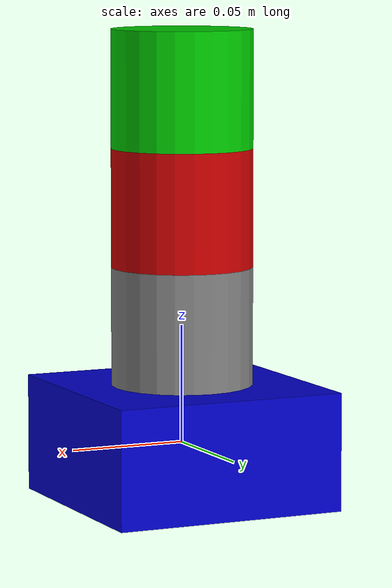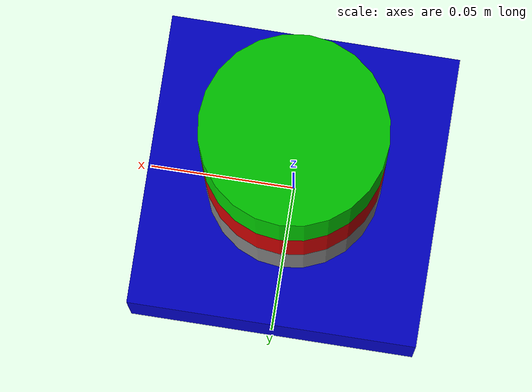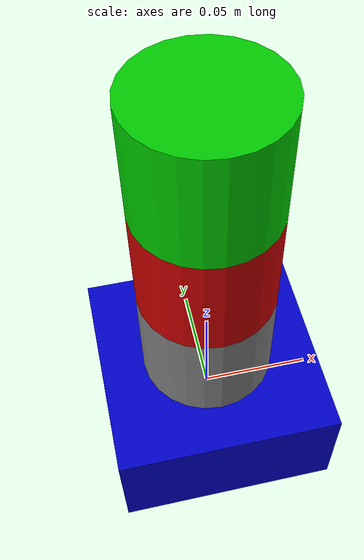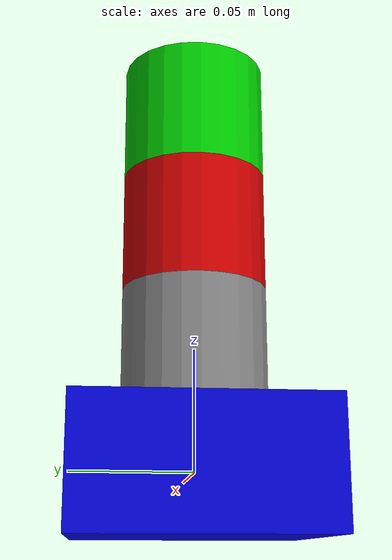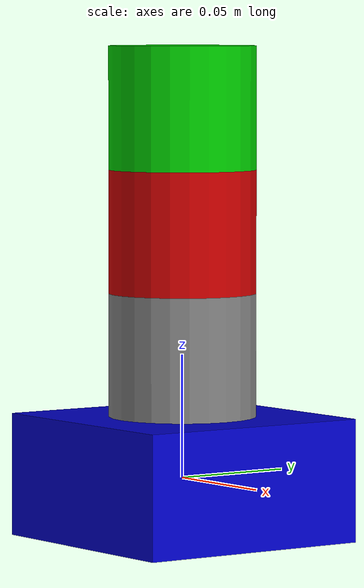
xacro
<?xml version="1.0"?>
<robot xmlns:xacro="http://www.ros.org/wiki/xacro" name="stepper_robot">
  <xacro:arg name="serial_port" default="/dev/ttyACM0"/>
  <xacro:arg name="baud_rate" default="115200"/>
  <xacro:arg name="steps_per_rev" default="200"/>
  <xacro:arg name="microsteps" default="8"/>

  <!-- Base link -->
  <link name="base_link">
    <visual>
      <geometry>
        <box size="0.1 0.1 0.05"/>
      </geometry>
      <material name="blue">
        <color rgba="0 0 0.8 1"/>
      </material>
    </visual>
  </link>

  <!-- Waist link (was stepper_link) -->
  <link name="waist_link">
    <visual>
      <geometry>
        <cylinder length="0.05" radius="0.03"/>
      </geometry>
      <material name="grey">
        <color rgba="0.5 0.5 0.5 1"/>
      </material>
    </visual>
  </link>

  <!-- Waist joint (was stepper_joint) -->
  <joint name="waist_joint" type="continuous">
    <parent link="base_link"/>
    <child link="waist_link"/>
    <origin xyz="0 0 0.05" rpy="0 0 0"/>
    <axis xyz="0 0 1"/>
  </joint>

  <!-- Shoulder link -->
  <link name="shoulder_link">
    <visual>
      <geometry>
        <cylinder length="0.05" radius="0.03"/>
      </geometry>
      <material name="red">
        <color rgba="0.8 0 0 1"/>
      </material>
    </visual>
  </link>

  <!-- Shoulder joint -->
  <joint name="shoulder_joint" type="continuous">
    <parent link="waist_link"/>
    <child link="shoulder_link"/>
    <origin xyz="0 0 0.05" rpy="0 0 0"/>
    <axis xyz="0 0 1"/>
  </joint>

  <!-- Elbow link -->
  <link name="elbow_link">
    <visual>
      <geometry>
        <cylinder length="0.05" radius="0.03"/>
      </geometry>
      <material name="green">
        <color rgba="0 0.8 0 1"/>
      </material>
    </visual>
  </link>

  <!-- Elbow joint -->
  <joint name="elbow_joint" type="continuous">
    <parent link="shoulder_link"/>
    <child link="elbow_link"/>
    <origin xyz="0 0 0.05" rpy="0 0 0"/>
    <axis xyz="0 0 1"/>
  </joint>

  <!-- ros2_control hardware interface -->
  <ros2_control name="StepperSystem" type="system">
    <hardware>
      <plugin>stepper_jtc_control/StepperHardwareInterface</plugin>
      <param name="serial_port">$(arg serial_port)</param>
      <param name="baud_rate">$(arg baud_rate)</param>
      <param name="steps_per_rev">$(arg steps_per_rev)</param>
      <param name="microsteps">$(arg microsteps)</param>
    </hardware>

    <joint name="waist_joint">
      <command_interface name="velocity">
        <param name="min">-50</param>
        <param name="max">50</param>
      </command_interface>
      <state_interface name="position"/>
      <state_interface name="velocity"/>
    </joint>

    <joint name="shoulder_joint">
      <command_interface name="velocity">
        <param name="min">-50</param>
        <param name="max">50</param>
      </command_interface>
      <state_interface name="position"/>
      <state_interface name="velocity"/>
    </joint>

    <joint name="elbow_joint">
      <command_interface name="velocity">
        <param name="min">-50</param>
        <param name="max">50</param>
      </command_interface>
      <state_interface name="position"/>
      <state_interface name="velocity"/>
    </joint>

  </ros2_control>
</robot>
